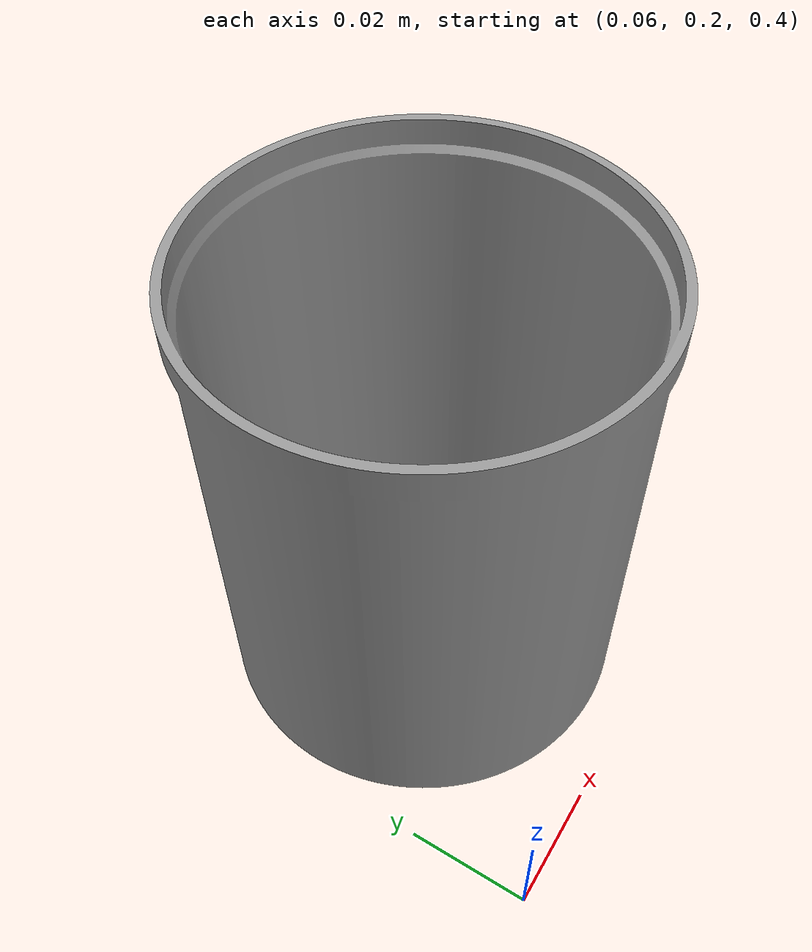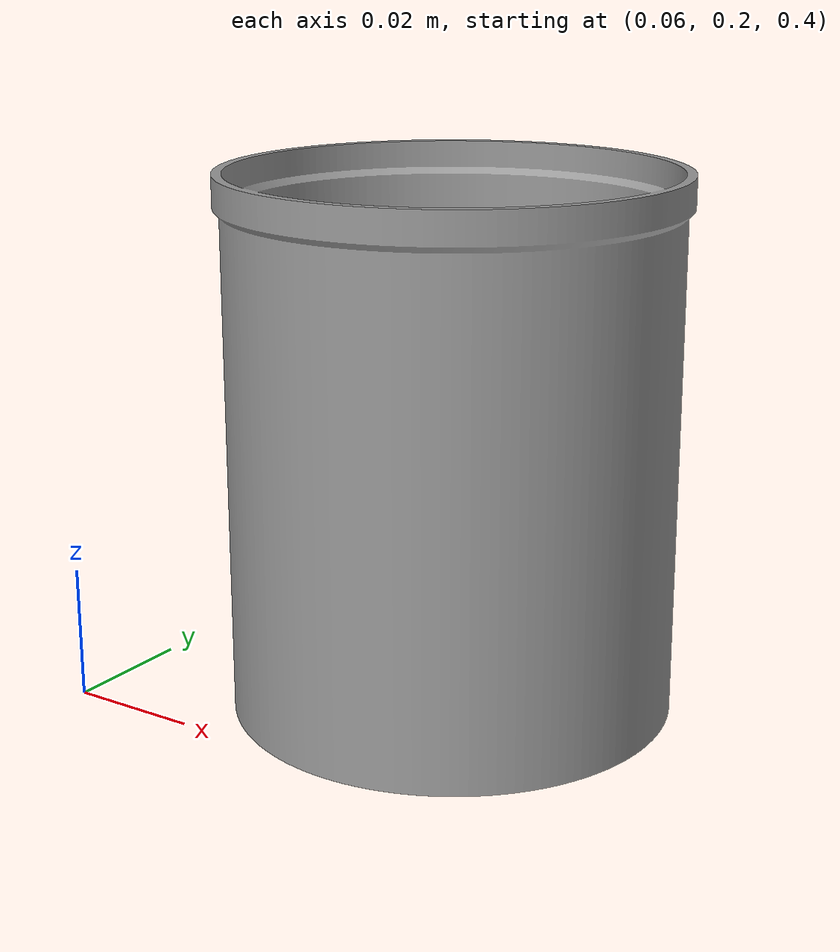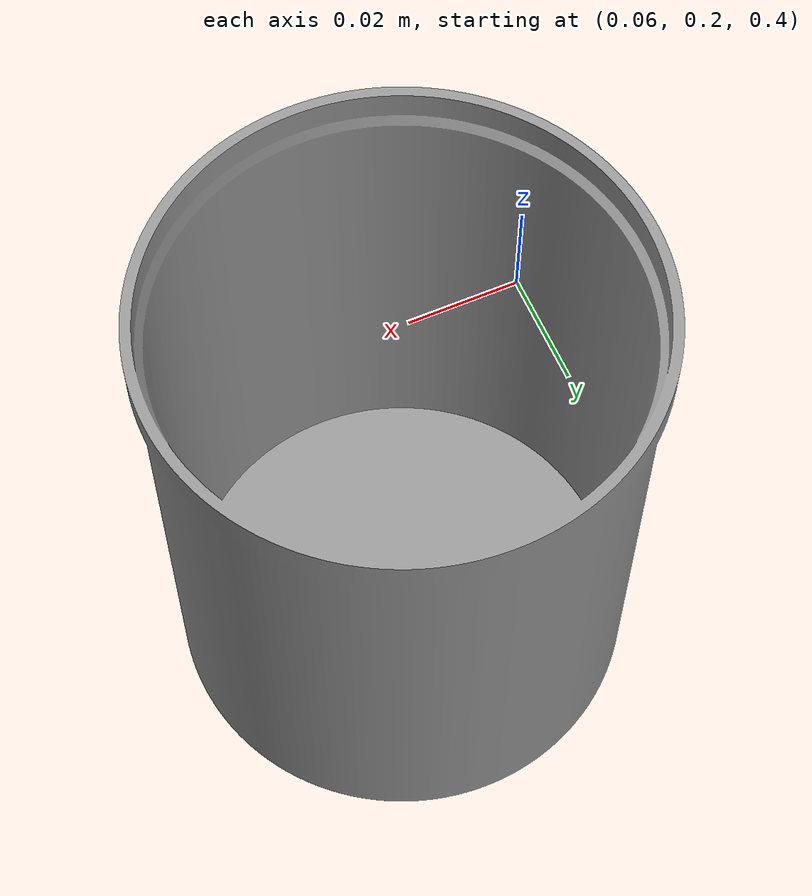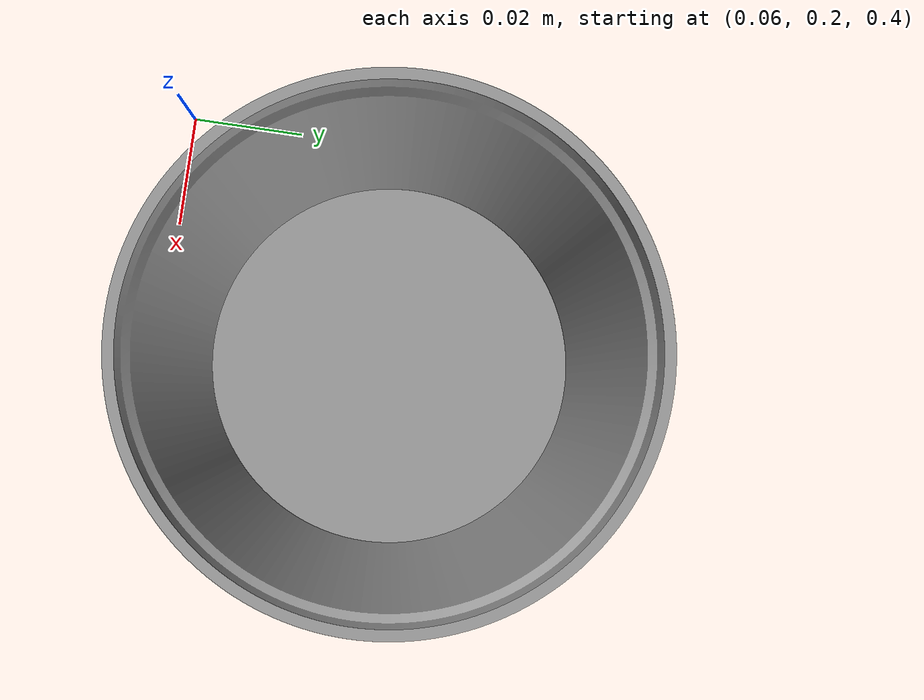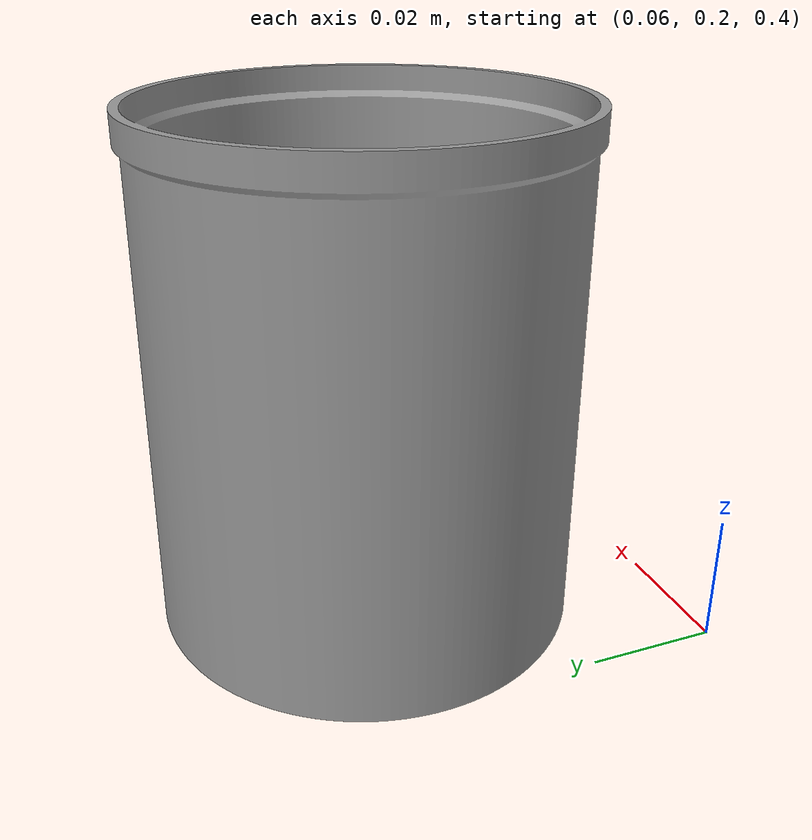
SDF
<?xml version="1.0" ?>
<sdf version="1.5">
  <world name="default">
    <!-- A global light source -->
    <include>
      <uri>model://sun</uri>
    </include>

    <!-- A ground plane -->
    <include>
      <uri>model://ground_plane</uri>
    </include>

    <include>
      <uri>model://something</uri>
      <pose>0.1 0.2 0.4 0 0 0</pose>
      <static>false</static>
    </include>
  </world>
</sdf>

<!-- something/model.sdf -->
<sdf version="1.5">
  <model name="something">
    <static>false</static>
    <link name="link">
      <collision name="collision">
        <geometry>
          <mesh>
            <uri>model://something/meshes/other.stl</uri>
            <scale>0.001 0.001 0.001</scale>
          </mesh>
        </geometry>
        <surface>
          <friction>
            <ode>
              <mu>100</mu>
              <mu2>50</mu2>
            </ode>
          </friction>
        </surface>
      </collision>
      <visual name="visual">
        <geometry>
          <mesh>
            <uri>model://something/meshes/other.stl</uri>
            <scale>0.001 0.001 0.001</scale>
          </mesh>
        </geometry>
        <material>
          <script>
            <uri>file://media/materials/scripts/gazebo.material</uri>
            <name>Gazebo/Grey</name>
          </script>
        </material>
      </visual>
    </link>
  </model>
</sdf>
